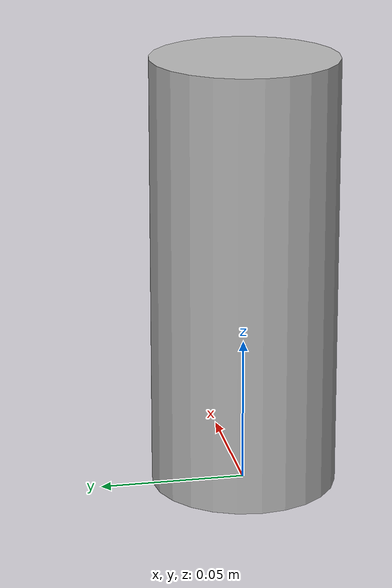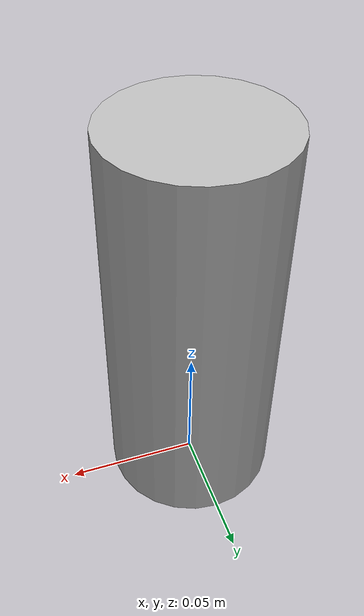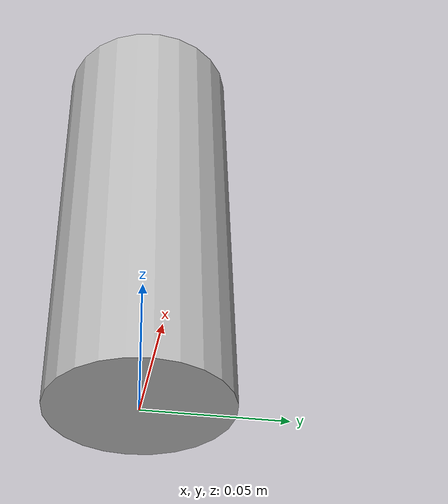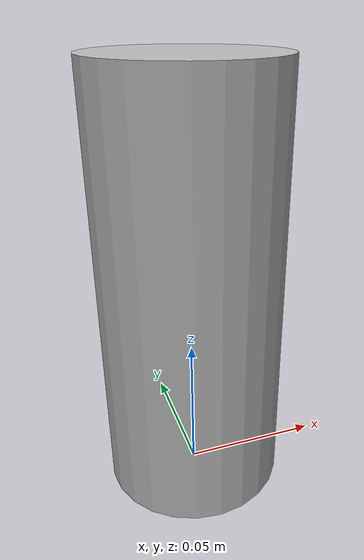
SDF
<sdf version="1.4">
  <model name="sprite">
    <static>0</static>
    <link name="link">
      <inertial>
        <mass>0.1</mass>
        <inertia>
          <ixx>0.000000</ixx>
          <ixy>0.000000</ixy>
          <ixz>0.000000</ixz>
          <iyy>0.000000</iyy>
          <iyz>0.000000</iyz>
          <izz>0.000000</izz>
        </inertia>
      </inertial>
      <collision name="collision">
        <pose>0 0 0.075 3.1416 0 0</pose>
        <geometry>
          <cylinder>
            <radius>0.032</radius>
            <length>0.15</length>
          </cylinder>
        </geometry>
        <surface>
          <bounce />
          <friction>
            <ode />
          </friction>
          <contact>
            <ode />
          </contact>
        </surface>
      </collision>
      <visual name="visual">
        <pose>0 0 0.075 3.1416 0 0</pose>
        <geometry>
          <cylinder>
            <radius>0.032</radius>
            <length>0.15</length>
          </cylinder>
        </geometry>
        <material>
          <script>
	      <uri>model://sprite/material/scripts</uri>
	      <uri>model://sprite/material/textures</uri>
              <name>Custom/sprite</name>
          </script>
        </material>
      </visual>
      <velocity_decay>
        <linear>0.000000</linear>
        <angular>0.000000</angular>
      </velocity_decay>
      <self_collide>0</self_collide>
      <kinematic>0</kinematic>
      <gravity>1</gravity>
    </link>
  </model>
</sdf>
